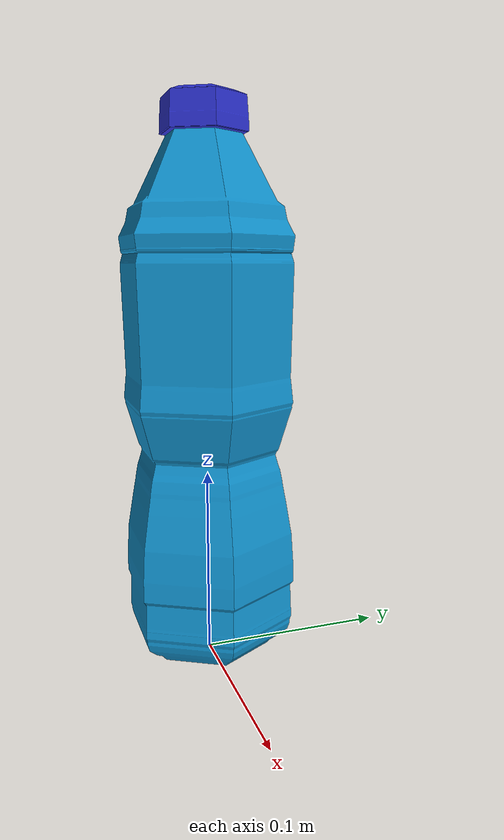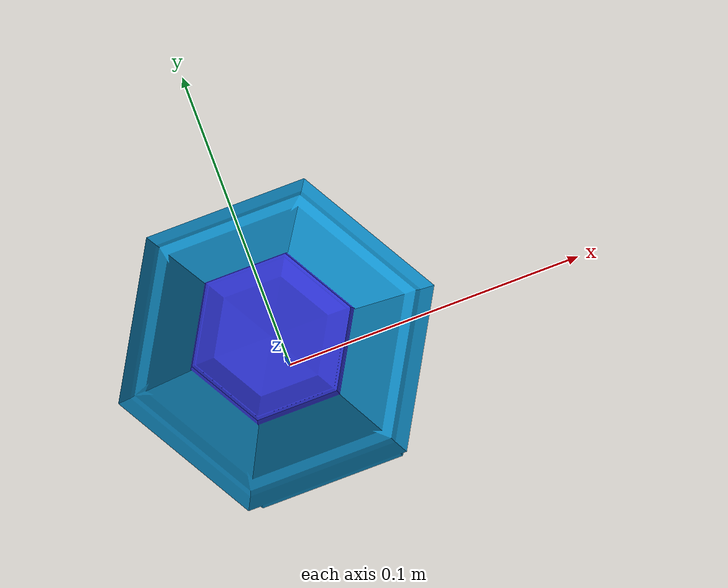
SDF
<?xml version="1.0" ?>
<sdf version="1.5">
  <model name="bottle_water">
    <link name="link">
      <pose>0 0 0 0 0 0</pose>
      <collision name="collision">
        <geometry>
          <mesh>
            <uri>model://bottle_water/meshes/model.dae</uri>
          </mesh>
        </geometry>
      </collision>
      <visual name="visual">
        <geometry>
          <mesh>
            <uri>model://bottle_water/meshes/model.dae</uri>
          </mesh>
        </geometry>
      </visual>
    </link>
    <static>1</static>
  </model>
</sdf>
